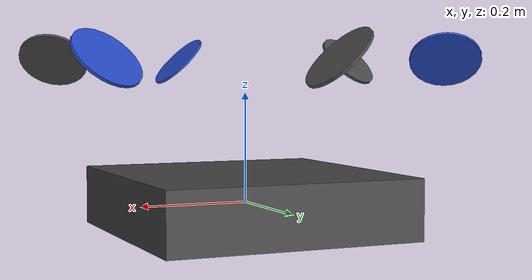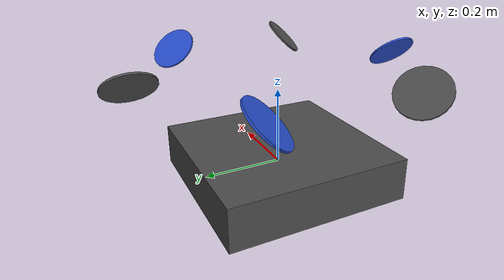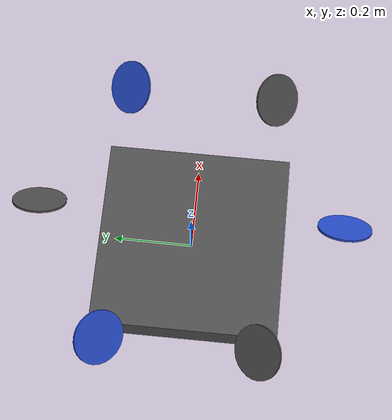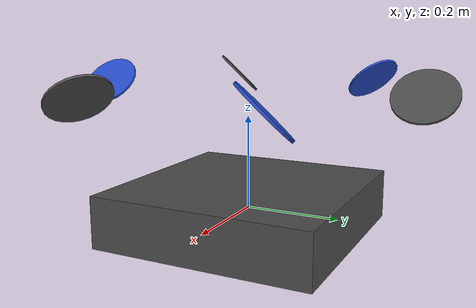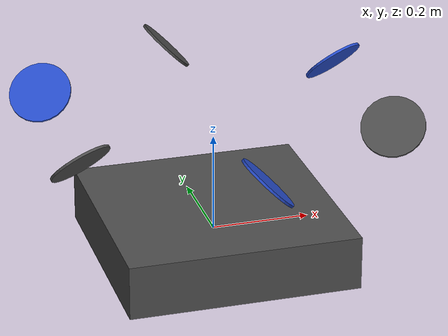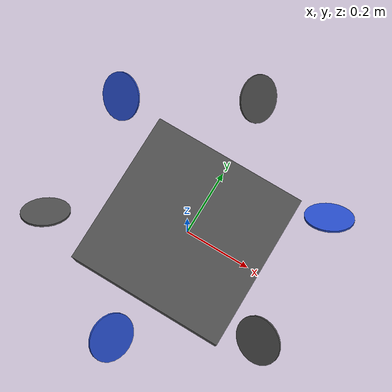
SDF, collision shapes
<?xml version="1.0" encoding="UTF-8"?>
<sdf version='1.9'>
  <model name='peach'>
    <self_collide>false</self_collide>
    <static>false</static>
    <link name='base_link'>
      <pose>0 0 0 0 -0 0</pose>
      <inertial>
        <pose>0 0 0 0 -0 0</pose>
        <mass>1.5</mass>
        <inertia>
          <ixx>0.029125</ixx>
          <ixy>0</ixy>
          <ixz>0</ixz>
          <iyy>0.029125</iyy>
          <iyz>0</iyz>
          <izz>0.055225</izz>
        </inertia>
      </inertial>
      <collision name='base_link_inertia_collision'>
        <pose>0 0 0 0 -0 0</pose>
        <geometry>
          <box>
            <size>0.47 0.47 0.11</size>
          </box>
        </geometry>
        <surface>
          <contact>
            <ode>
              <min_depth>0.001</min_depth>
              <max_vel>0</max_vel>
            </ode>
          </contact>
          <friction>
            <ode/>
          </friction>
        </surface>
      </collision>
      <visual name='base_link_inertia_visual'>
  		<pose>0.34 -0.38 0 0 0 1.57</pose>
        <geometry>
          <mesh>
            <uri>model://peach/meshes/peach_mesh.stl</uri>
          </mesh>
        </geometry>
        <material>
          <script>
            <name>Gazebo/DarkGrey</name>
            <uri>file://media/materials/scripts/gazebo.material</uri>
          </script>
        </material>
      </visual>
      <gravity>true</gravity>
      <velocity_decay/>
      <sensor name="air_pressure_sensor" type="air_pressure">
        <always_on>1</always_on>
        <update_rate>50</update_rate>
        <air_pressure>
          <pressure>
            <noise type="gaussian">
              <mean>0</mean>
              <stddev>0.01</stddev>
            </noise>
          </pressure>
        </air_pressure>
      </sensor>
      <sensor name="imu_sensor" type="imu">
        <always_on>1</always_on>
        <update_rate>250</update_rate>
        <imu>
          <angular_velocity>
            <x>
              <noise type="gaussian">
                <mean>0</mean>
                <stddev>0.00018665</stddev>
                <dynamic_bias_stddev>3.8785e-05</dynamic_bias_stddev>
                <dynamic_bias_correlation_time>1000</dynamic_bias_correlation_time>
              </noise>
            </x>
            <y>
              <noise type="gaussian">
                <mean>0</mean>
                <stddev>0.00018665</stddev>
                <dynamic_bias_stddev>3.8785e-05</dynamic_bias_stddev>
                <dynamic_bias_correlation_time>1000</dynamic_bias_correlation_time>
              </noise>
            </y>
            <z>
              <noise type="gaussian">
                <mean>0</mean>
                <stddev>0.00018665</stddev>
                <dynamic_bias_stddev>3.8785e-05</dynamic_bias_stddev>
                <dynamic_bias_correlation_time>1000</dynamic_bias_correlation_time>
              </noise>
            </z>
          </angular_velocity>
          <linear_acceleration>
            <x>
              <noise type="gaussian">
                <mean>0</mean>
                <stddev>0.00186</stddev>
                <dynamic_bias_stddev>0.006</dynamic_bias_stddev>
                <dynamic_bias_correlation_time>300</dynamic_bias_correlation_time>
              </noise>
            </x>
            <y>
              <noise type="gaussian">
                <mean>0</mean>
                <stddev>0.00186</stddev>
                <dynamic_bias_stddev>0.006</dynamic_bias_stddev>
                <dynamic_bias_correlation_time>300</dynamic_bias_correlation_time>
              </noise>
            </y>
            <z>
              <noise type="gaussian">
                <mean>0</mean>
                <stddev>0.00186</stddev>
                <dynamic_bias_stddev>0.006</dynamic_bias_stddev>
                <dynamic_bias_correlation_time>300</dynamic_bias_correlation_time>
              </noise>
            </z>
          </linear_acceleration>
        </imu>
      </sensor>
      <sensor name="magnetometer_sensor" type="magnetometer">
        <always_on>1</always_on>
        <update_rate>100</update_rate>
        <magnetometer>
          <!-- TODO: update to fix units and coordinate system when we move past Harmonic -->
          <!-- See https://github.com/gazebosim/gz-sim/pull/2460 -->
          <!-- 3mgauss RMS: NOTE: noise is in tesla but sensor reports data in gauss -->
          <!-- Noise modeled after IIS2MDC -->
          <x>
            <noise type="gaussian">
              <stddev>0.0001</stddev>
            </noise>
          </x>
          <y>
            <noise type="gaussian">
              <stddev>0.0001</stddev>
            </noise>
          </y>
          <z>
            <noise type="gaussian">
              <stddev>0.0001</stddev>
            </noise>
          </z>
        </magnetometer>
      </sensor>
      <sensor name="navsat_sensor" type="navsat">
        <always_on>1</always_on>
        <update_rate>30</update_rate>
      </sensor>
    </link>
    <link name='rotor_0'>
      <pose>0 -0.36 0.26 0 0.785398 0</pose>
      <inertial>
        <pose>0 0 0 0 -0 0</pose>
        <mass>0.005</mass>
        <inertia>
          <ixx>9.75e-07</ixx>
          <ixy>0</ixy>
          <ixz>0</ixz>
          <iyy>0.000273104</iyy>
          <iyz>0</iyz>
          <izz>0.000274004</izz>
        </inertia>
      </inertial>
      <collision name='rotor_0_collision'>
        <pose>0 0 0 0 -0 0</pose>
        <geometry>
          <cylinder>
            <length>0.005</length>
            <radius>0.064</radius>
          </cylinder>
        </geometry>
        <surface>
          <contact>
            <ode/>
          </contact>
          <friction>
            <ode/>
          </friction>
        </surface>
      </collision>
      <visual name='rotor_0_visual'>
        <pose>0 0 0 0 -0 0</pose>
        <geometry>
          <mesh>
            <uri>model://peach/meshes/iris_prop_cw.dae</uri>
          </mesh>
        </geometry>
        <material>
          <script>
            <name>Gazebo/Blue</name>
            <uri>file://media/materials/scripts/gazebo.material</uri>
          </script>
        </material>
      </visual>
      <gravity>1</gravity>
      <velocity_decay/>
    </link>
    <joint name='rotor_0_joint' type='revolute'>
      <child>rotor_0</child>
      <parent>base_link</parent>
      <axis>
        <xyz>0 0 1</xyz>
        <limit>
          <lower>-1e+16</lower>
          <upper>1e+16</upper>
        </limit>
        <dynamics>
          <spring_reference>0</spring_reference>
          <spring_stiffness>0</spring_stiffness>
        </dynamics>

      </axis>
    </joint>
    <link name='rotor_1'>
      <pose>-0 0.36 0.26 0 -0.785398 3.14159</pose>
      <inertial>
        <pose>0 0 0 0 -0 0</pose>
        <mass>0.005</mass>
        <inertia>
          <ixx>9.75e-07</ixx>
          <ixy>0</ixy>
          <ixz>0</ixz>
          <iyy>0.000273104</iyy>
          <iyz>0</iyz>
          <izz>0.000274004</izz>
        </inertia>
      </inertial>
      <collision name='rotor_1_collision'>
        <pose>0 0 0 0 -0 0</pose>
        <geometry>
          <cylinder>
            <length>0.005</length>
            <radius>0.064</radius>
          </cylinder>
        </geometry>
        <surface>
          <contact>
            <ode/>
          </contact>
          <friction>
            <ode/>
          </friction>
        </surface>
      </collision>
      <visual name='rotor_1_visual'>
        <pose>0 0 0 0 -0 0</pose>
        <geometry>
          <mesh>
            <uri>model://peach/meshes/iris_prop_ccw.dae</uri>
          </mesh>
        </geometry>
        <material>
          <script>
            <name>Gazebo/DarkGrey</name>
            <uri>file://media/materials/scripts/gazebo.material</uri>
          </script>
        </material>
      </visual>
      <gravity>1</gravity>
      <velocity_decay/>
    </link>
    <joint name='rotor_1_joint' type='revolute'>
      <child>rotor_1</child>
      <parent>base_link</parent>
      <axis>
        <xyz>0 0 1</xyz>
        <limit>
          <lower>-1e+16</lower>
          <upper>1e+16</upper>
        </limit>
        <dynamics>
          <spring_reference>0</spring_reference>
          <spring_stiffness>0</spring_stiffness>
        </dynamics>
      </axis>
    </joint>
    <link name='rotor_2'>
      <pose>0.31176914536 0.18 0.26 0 0.785398 2.0944</pose>
      <inertial>
        <pose>0 0 0 0 -0 0</pose>
        <mass>0.005</mass>
        <inertia>
          <ixx>9.75e-07</ixx>
          <ixy>0</ixy>
          <ixz>0</ixz>
          <iyy>0.000273104</iyy>
          <iyz>0</iyz>
          <izz>0.000274004</izz>
        </inertia>
      </inertial>
      <collision name='rotor_2_collision'>
        <pose>0 0 0 0 -0 0</pose>
        <geometry>
          <cylinder>
            <length>0.005</length>
            <radius>0.064</radius>
          </cylinder>
        </geometry>
        <surface>
          <contact>
            <ode/>
          </contact>
          <friction>
            <ode/>
          </friction>
        </surface>
      </collision>
      <visual name='rotor_2_visual'>
        <pose>0 0 0 0 -0 0</pose>
        <geometry>
          <mesh>
            <uri>model://peach/meshes/iris_prop_cw.dae</uri>
          </mesh>
        </geometry>
        <material>
          <script>
            <name>Gazebo/Blue</name>
            <uri>file://media/materials/scripts/gazebo.material</uri>
          </script>
        </material>
      </visual>
      <gravity>1</gravity>
      <velocity_decay/>
    </link>
    <joint name='rotor_2_joint' type='revolute'>
      <child>rotor_2</child>
      <parent>base_link</parent>
      <axis>
        <xyz>0 0 1</xyz>
        <limit>
          <lower>-1e+16</lower>
          <upper>1e+16</upper>
        </limit>
        <dynamics>
          <spring_reference>0</spring_reference>
          <spring_stiffness>0</spring_stiffness>
        </dynamics>

      </axis>
    </joint>
    <link name='rotor_3'>
      <pose>-0.31176914536 -0.18 0.26 0 -0.785398 -1.0472</pose>
      <inertial>
        <pose>0 0 0 0 -0 0</pose>
        <mass>0.005</mass>
        <inertia>
          <ixx>9.75e-07</ixx>
          <ixy>0</ixy>
          <ixz>0</ixz>
          <iyy>0.000273104</iyy>
          <iyz>0</iyz>
          <izz>0.000274004</izz>
        </inertia>
      </inertial>
      <collision name='rotor_3_collision'>
        <pose>0 0 0 0 -0 0</pose>
        <geometry>
          <cylinder>
            <length>0.005</length>
            <radius>0.064</radius>
          </cylinder>
        </geometry>
        <surface>
          <contact>
            <ode/>
          </contact>
          <friction>
            <ode/>
          </friction>
        </surface>
      </collision>
      <visual name='rotor_3_visual'>
        <pose>0 0 0 0 -0 0</pose>
        <geometry>
          <mesh>
            <uri>model://peach/meshes/iris_prop_ccw.dae</uri>
          </mesh>
        </geometry>
        <material>
          <script>
            <name>Gazebo/DarkGrey</name>
            <uri>file://media/materials/scripts/gazebo.material</uri>
          </script>
        </material>
      </visual>
      <gravity>1</gravity>
      <velocity_decay/>
    </link>
    <joint name='rotor_3_joint' type='revolute'>
      <child>rotor_3</child>
      <parent>base_link</parent>
      <axis>
        <xyz>0 0 1</xyz>
        <limit>
          <lower>-1e+16</lower>
          <upper>1e+16</upper>
        </limit>
        <dynamics>
          <spring_reference>0</spring_reference>
          <spring_stiffness>0</spring_stiffness>
        </dynamics>

      </axis>
    </joint>
    <link name='rotor_4'>
      <pose>0.31176914536 -0.18 0.26 0 -0.785398 1.0472</pose>
      <inertial>
        <pose>0 0 0 0 -0 0</pose>
        <mass>0.005</mass>
        <inertia>
          <ixx>9.75e-07</ixx>
          <ixy>0</ixy>
          <ixz>0</ixz>
          <iyy>0.000273104</iyy>
          <iyz>0</iyz>
          <izz>0.000274004</izz>
        </inertia>
      </inertial>
      <collision name='rotor_4_collision'>
        <pose>0 0 0 0 -0 0</pose>
        <geometry>
          <cylinder>
            <length>0.005</length>
            <radius>0.064</radius>
          </cylinder>
        </geometry>
        <surface>
          <contact>
            <ode/>
          </contact>
          <friction>
            <ode/>
          </friction>
        </surface>
      </collision>
      <visual name='rotor_4_visual'>
        <pose>0 0 0 0 -0 0</pose>
        <geometry>
          <mesh>
            <uri>model://peach/meshes/iris_prop_ccw.dae</uri>
          </mesh>
        </geometry>
        <material>
          <script>
            <name>Gazebo/DarkGrey</name>
            <uri>file://media/materials/scripts/gazebo.material</uri>
          </script>
        </material>
      </visual>
      <gravity>1</gravity>
      <velocity_decay/>
    </link>
    <joint name='rotor_4_joint' type='revolute'>
      <child>rotor_4</child>
      <parent>base_link</parent>
      <axis>
        <xyz>0 0 1</xyz>
        <limit>
          <lower>-1e+16</lower>
          <upper>1e+16</upper>
        </limit>
        <dynamics>
          <spring_reference>0</spring_reference>
          <spring_stiffness>0</spring_stiffness>
        </dynamics>

      </axis>
    </joint>
    <link name='rotor_5'>
      <pose>-0.31176914536 0.18 0.26 0 0.785398 -2.0944</pose>
      <inertial>
        <pose>0 0 0 0 -0 0</pose>
        <mass>0.005</mass>
        <inertia>
          <ixx>9.75e-07</ixx>
          <ixy>0</ixy>
          <ixz>0</ixz>
          <iyy>0.000273104</iyy>
          <iyz>0</iyz>
          <izz>0.000274004</izz>
        </inertia>
      </inertial>
      <collision name='rotor_5_collision'>
        <pose>0 0 0 0 -0 0</pose>
        <geometry>
          <cylinder>
            <length>0.005</length>
            <radius>0.064</radius>
          </cylinder>
        </geometry>
        <surface>
          <contact>
            <ode/>
          </contact>
          <friction>
            <ode/>
          </friction>
        </surface>
      </collision>
      <visual name='rotor_5_visual'>
        <pose>0 0 0 0 -0 0</pose>
        <geometry>
          <mesh>
            <uri>model://peach/meshes/iris_prop_cw.dae</uri>
          </mesh>
        </geometry>
        <material>
          <script>
            <name>Gazebo/Blue</name>
            <uri>file://media/materials/scripts/gazebo.material</uri>
          </script>
        </material>
      </visual>
      <gravity>1</gravity>
      <velocity_decay/>
    </link>
    <joint name='rotor_5_joint' type='revolute'>
      <child>rotor_5</child>
      <parent>base_link</parent>
      <axis>
        <xyz>0 0 1</xyz>
        <limit>
          <lower>-1e+16</lower>
          <upper>1e+16</upper>
        </limit>
        <dynamics>
          <spring_reference>0</spring_reference>
          <spring_stiffness>0</spring_stiffness>
        </dynamics>

      </axis>
    </joint>

    <plugin filename="gz-sim-multicopter-motor-model-system" name="gz::sim::systems::MulticopterMotorModel">
      <jointName>rotor_0_joint</jointName>
      <linkName>rotor_0</linkName>
      <turningDirection>cw</turningDirection>
      <timeConstantUp>0.0125</timeConstantUp>
      <timeConstantDown>0.025</timeConstantDown>
      <maxRotVelocity>1100.0</maxRotVelocity>
      <motorConstant>5.84e-06</motorConstant>
      <momentConstant>0.06</momentConstant>
      <commandSubTopic>command/motor_speed</commandSubTopic>
      <motorNumber>0</motorNumber>
      <rotorDragCoefficient>0.000175</rotorDragCoefficient>
      <rollingMomentCoefficient>1e-06</rollingMomentCoefficient>
      <rotorVelocitySlowdownSim>10</rotorVelocitySlowdownSim>
      <motorType>velocity</motorType>
    </plugin>
    <plugin filename="gz-sim-multicopter-motor-model-system" name="gz::sim::systems::MulticopterMotorModel">
      <jointName>rotor_1_joint</jointName>
      <linkName>rotor_1</linkName>
      <turningDirection>ccw</turningDirection>
      <timeConstantUp>0.0125</timeConstantUp>
      <timeConstantDown>0.025</timeConstantDown>
      <maxRotVelocity>1100.0</maxRotVelocity>
      <motorConstant>5.84e-06</motorConstant>
      <momentConstant>0.06</momentConstant>
      <commandSubTopic>command/motor_speed</commandSubTopic>
      <motorNumber>1</motorNumber>
      <rotorDragCoefficient>0.000175</rotorDragCoefficient>
      <rollingMomentCoefficient>1e-06</rollingMomentCoefficient>
      <rotorVelocitySlowdownSim>10</rotorVelocitySlowdownSim>
      <motorType>velocity</motorType>
    </plugin>
    <plugin filename="gz-sim-multicopter-motor-model-system" name="gz::sim::systems::MulticopterMotorModel">
      <jointName>rotor_2_joint</jointName>
      <linkName>rotor_2</linkName>
      <turningDirection>cw</turningDirection>
      <timeConstantUp>0.0125</timeConstantUp>
      <timeConstantDown>0.025</timeConstantDown>
      <maxRotVelocity>1100.0</maxRotVelocity>
      <motorConstant>5.84e-06</motorConstant>
      <momentConstant>0.06</momentConstant>
      <commandSubTopic>command/motor_speed</commandSubTopic>
      <motorNumber>2</motorNumber>
      <rotorDragCoefficient>0.000175</rotorDragCoefficient>
      <rollingMomentCoefficient>1e-06</rollingMomentCoefficient>
      <rotorVelocitySlowdownSim>10</rotorVelocitySlowdownSim>
      <motorType>velocity</motorType>
    </plugin>
    <plugin filename="gz-sim-multicopter-motor-model-system" name="gz::sim::systems::MulticopterMotorModel">
      <jointName>rotor_3_joint</jointName>
      <linkName>rotor_3</linkName>
      <turningDirection>ccw</turningDirection>
      <timeConstantUp>0.0125</timeConstantUp>
      <timeConstantDown>0.025</timeConstantDown>
      <maxRotVelocity>1100.0</maxRotVelocity>
      <motorConstant>5.84e-06</motorConstant>
      <momentConstant>0.06</momentConstant>
      <commandSubTopic>command/motor_speed</commandSubTopic>
      <motorNumber>3</motorNumber>
      <rotorDragCoefficient>0.000175</rotorDragCoefficient>
      <rollingMomentCoefficient>1e-06</rollingMomentCoefficient>
      <rotorVelocitySlowdownSim>10</rotorVelocitySlowdownSim>
      <motorType>velocity</motorType>
    </plugin>
    <plugin filename="gz-sim-multicopter-motor-model-system" name="gz::sim::systems::MulticopterMotorModel">
      <jointName>rotor_4_joint</jointName>
      <linkName>rotor_4</linkName>
      <turningDirection>ccw</turningDirection>
      <timeConstantUp>0.0125</timeConstantUp>
      <timeConstantDown>0.025</timeConstantDown>
      <maxRotVelocity>1100.0</maxRotVelocity>
      <motorConstant>5.84e-06</motorConstant>
      <momentConstant>0.06</momentConstant>
      <commandSubTopic>command/motor_speed</commandSubTopic>
      <motorNumber>4</motorNumber>
      <rotorDragCoefficient>0.000175</rotorDragCoefficient>
      <rollingMomentCoefficient>1e-06</rollingMomentCoefficient>
      <rotorVelocitySlowdownSim>10</rotorVelocitySlowdownSim>
      <motorType>velocity</motorType>
    </plugin>
    <plugin filename="gz-sim-multicopter-motor-model-system" name="gz::sim::systems::MulticopterMotorModel">
      <jointName>rotor_5_joint</jointName>
      <linkName>rotor_5</linkName>
      <turningDirection>cw</turningDirection>
      <timeConstantUp>0.0125</timeConstantUp>
      <timeConstantDown>0.025</timeConstantDown>
      <maxRotVelocity>1100.0</maxRotVelocity>
      <motorConstant>5.84e-06</motorConstant>
      <momentConstant>0.06</momentConstant>
      <commandSubTopic>command/motor_speed</commandSubTopic>
      <motorNumber>5</motorNumber>
      <rotorDragCoefficient>0.000175</rotorDragCoefficient>
      <rollingMomentCoefficient>1e-06</rollingMomentCoefficient>
      <rotorVelocitySlowdownSim>10</rotorVelocitySlowdownSim>
      <motorType>velocity</motorType>
    </plugin>
  </model>
</sdf>
